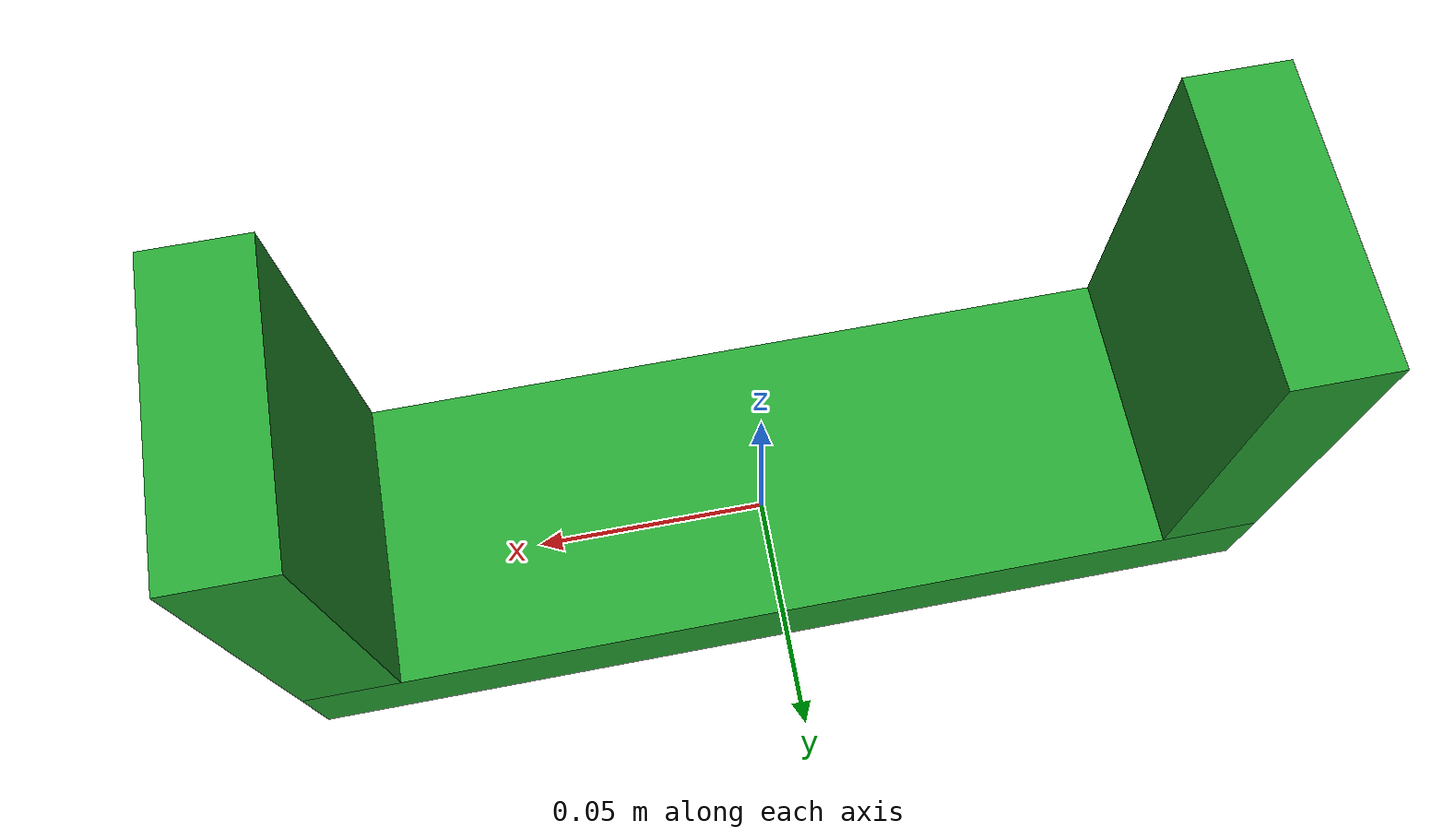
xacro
<?xml version="1.0"?>
<robot xmlns:xacro="http://www.ros.org/wiki/xacro">

    <link name="gripper_base_link">
        <visual>
            <origin xyz="0 0 0.01" rpy="0 0 0" />
            <geometry>
                <box size="0.2 0.06 0.02" />
            </geometry>
            <material name="dark_green"/>
        </visual>
        <collision>
            <origin xyz="0 0 0.01" rpy="0 0 0" />
            <geometry>
                <box size="0.2 0.06 0.02" />
            </geometry>
        </collision>
    </link>

    <link name="gripper_left_finger_link">
        <visual>
            <origin xyz="0 0 0.05" rpy="0 0 0" />
            <geometry>
                <box size="0.02 0.06 0.08" />
            </geometry>
            <material name="light_green"/>
        </visual>
        <collision>
            <origin xyz="0 0 0.05" rpy="0 0 0" />
            <geometry>
                <box size="0.02 0.06 0.08" />
            </geometry>
        </collision>
    </link>

    <link name="gripper_right_finger_link">
        <visual>
            <origin xyz="0 0 0.05" rpy="0 0 0" />
            <geometry>
                <box size="0.02 0.06 0.08" />
            </geometry>
            <material name="light_green"/>
        </visual>
        <collision>
            <origin xyz="0 0 0.05" rpy="0 0 0" />
            <geometry>
                <box size="0.02 0.06 0.08" />
            </geometry>
        </collision>
    </link>

    <joint name="gripper_base_left_joint" type="prismatic">
        <parent link="gripper_base_link" />
        <child link="gripper_left_finger_link" />
        <origin xyz="-0.09 0 0.01" rpy="0 0 0" />
        <axis xyz="1 0 0" />
        <limit lower="0.0" upper="0.08" effort="1000.0" velocity="1.0" />
    </joint>

    <joint name="gripper_base_right_joint" type="prismatic">
        <parent link="gripper_base_link" />
        <child link="gripper_right_finger_link" />
        <origin xyz="0.09 0 0.01" rpy="0 0 ${pi}" />
        <axis xyz="1 0 0" />
        <mimic joint = "gripper_base_left_joint" multiplier= "1.0" />
        <limit lower="0.0" upper="0.08" effort="1000.0" velocity="1.0" />
    </joint>

</robot>
